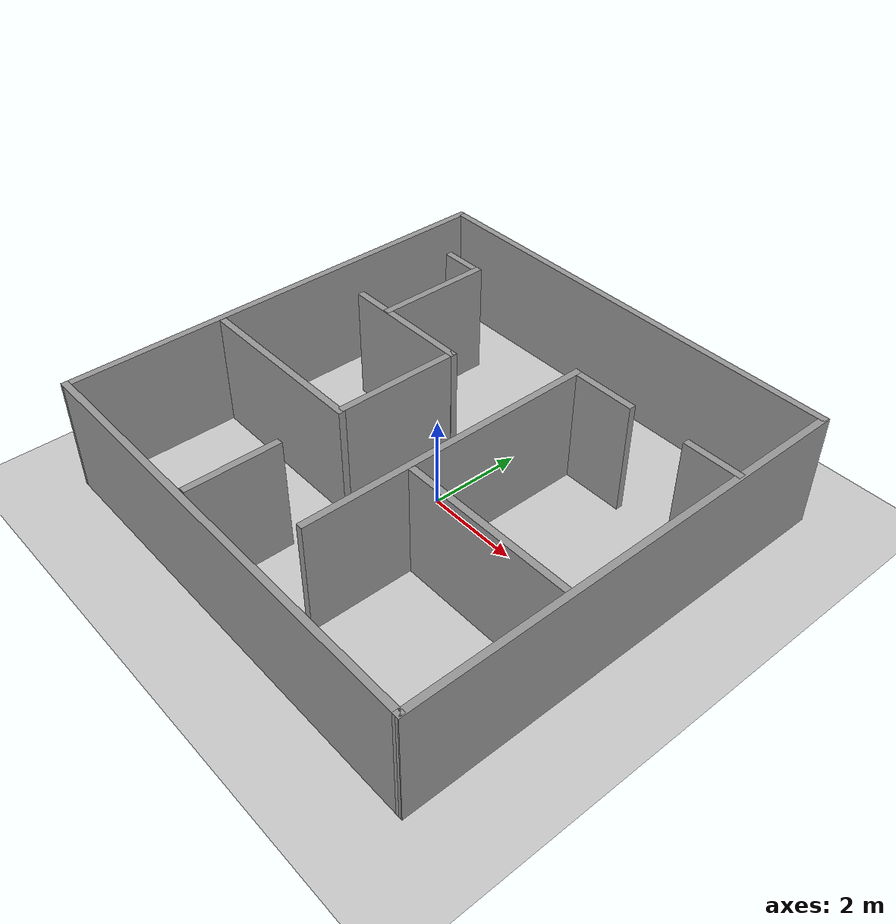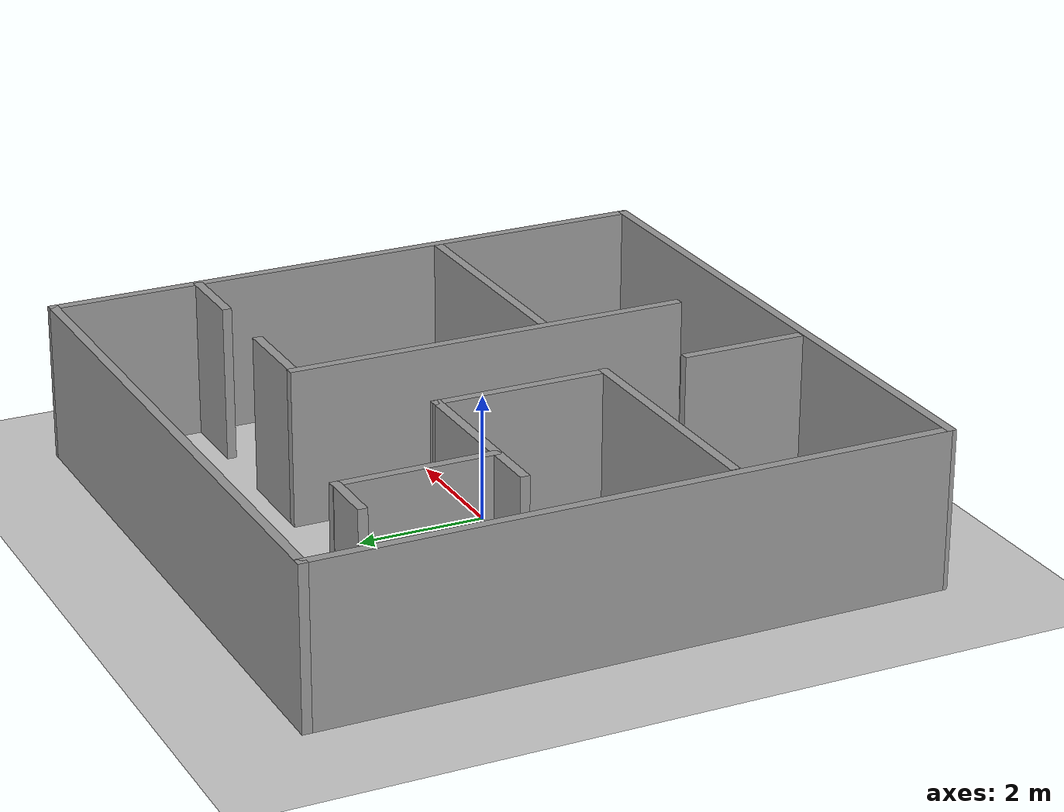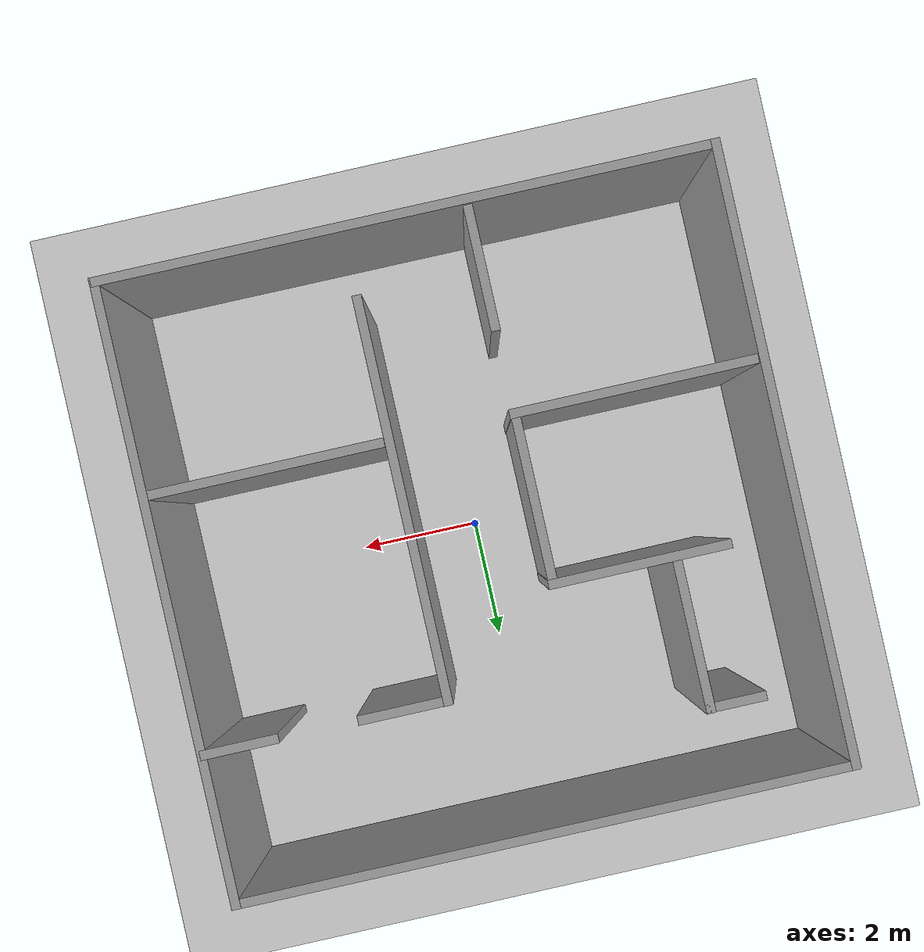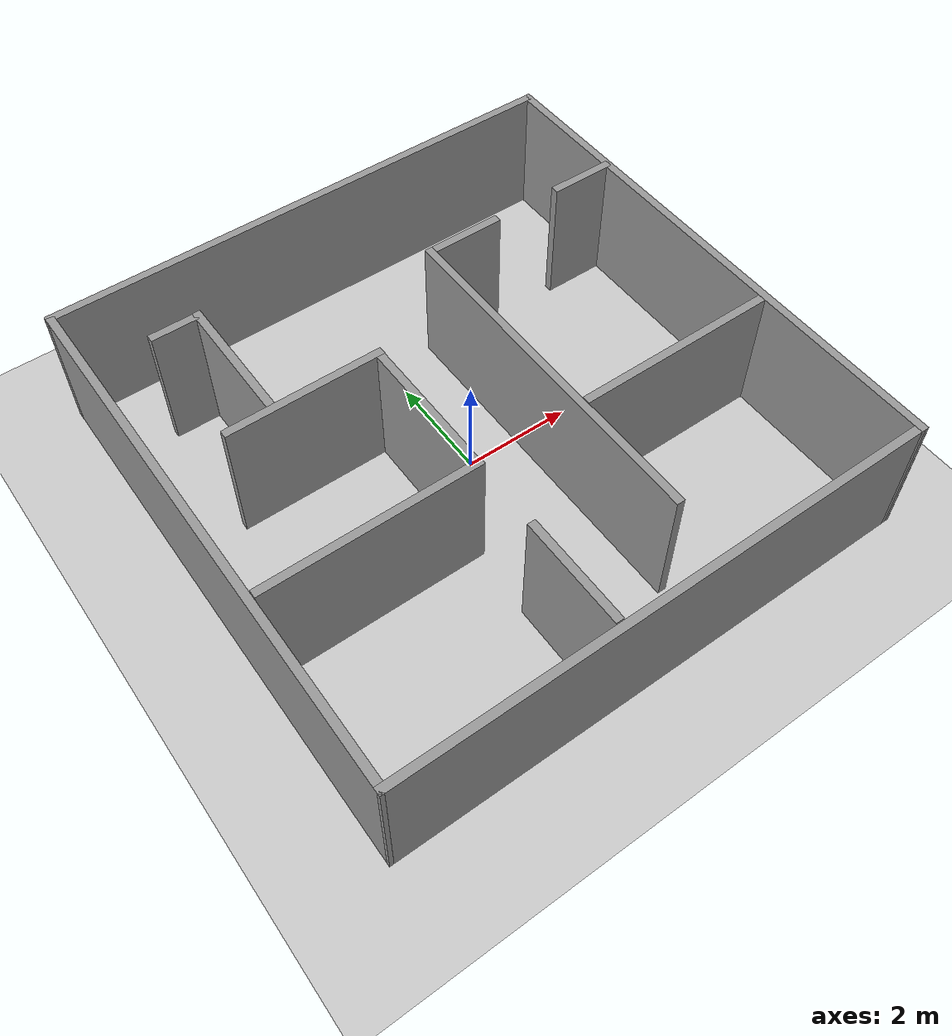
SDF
<sdf version="1.6">
 <world name="default">
  <light name="sun" type="directional">
   <pose>0 0 10 0 -0 0</pose>
   <diffuse>0.8 0.8 0.8 1</diffuse>
   <specular>0.2 0.2 0.2 1</specular>
   <attenuation>
    <range>1000</range>
    <constant>0.9</constant>
    <linear>0.01</linear>
    <quadratic>0.001</quadratic>
   </attenuation>
   <direction>-0.5 0.1 -0.9</direction>
  </light>
  <model name="ground_plane">
   <static>1</static>
   <link name="link">
    <collision name="collision">
     <geometry><plane><normal>0 0 1</normal><size>100 100</size></plane></geometry>
     <surface>
      <contact><collide_bitmask>65535</collide_bitmask></contact>
      <friction><ode><mu>100</mu><mu2>50</mu2></ode></friction>
     </surface>
    </collision>
    <visual name="visual">
     <cast_shadows>0</cast_shadows>
     <geometry><plane><normal>0 0 1</normal><size>100 100</size></plane></geometry>
     <material>
      <script><uri>file://media/materials/scripts/gazebo.material</uri><name>Gazebo/Grey</name></script>
     </material>
    </visual>
   </link>
  </model>
  <gravity>0 0 -9.8</gravity>
  <magnetic_field>6e-06 2.3e-05 -4.2e-05</magnetic_field>
  <atmosphere type="adiabatic"/>
  <physics name="default_physics" default="0" type="ode">
   <max_step_size>0.001</max_step_size>
   <real_time_factor>1</real_time_factor>
   <real_time_update_rate>1000</real_time_update_rate>
  </physics>
  <scene><ambient>0.4 0.4 0.4 1</ambient><background>0.7 0.7 0.7 1</background><shadows>1</shadows></scene>
  <spherical_coordinates>
   <surface_model>EARTH_WGS84</surface_model>
   <latitude_deg>0</latitude_deg>
   <longitude_deg>0</longitude_deg>
   <elevation>0</elevation>
   <heading_deg>0</heading_deg>
  </spherical_coordinates>
  <model name="simple_building_floor">
   <link name="Wall_11">
    <collision name="Wall_11_Collision">
     <geometry><box><size>6.5 0.15 2.5</size></box></geometry>
     <pose>0 0 1.25 0 -0 0</pose>
    </collision>
    <visual name="Wall_11_Visual">
     <pose>0 0 1.25 0 -0 0</pose>
     <geometry><box><size>6.5 0.15 2.5</size></box></geometry>
     <material>
      <script><uri>file://media/materials/scripts/gazebo.material</uri><name>Gazebo/Grey</name></script>
      <ambient>1 1 1 1</ambient>
     </material>
     <meta><layer>0</layer></meta>
    </visual>
    <pose>1.01204 -0.592703 0 0 0 -1.5708</pose>
   </link>
   <link name="Wall_13">
    <collision name="Wall_13_Collision">
     <geometry><box><size>2.9142 0.15 2.5</size></box></geometry>
     <pose>0 0 1.25 0 -0 0</pose>
    </collision>
    <visual name="Wall_13_Visual">
     <pose>0 0 1.25 0 -0 0</pose>
     <geometry><box><size>2.9142 0.15 2.5</size></box></geometry>
     <material>
      <script><uri>file://media/materials/scripts/gazebo.material</uri><name>Gazebo/Grey</name></script>
      <ambient>1 1 1 1</ambient>
     </material>
     <meta><layer>0</layer></meta>
    </visual>
    <pose>-2.35206 1.17551 0 0 -0 0.002425</pose>
   </link>
   <link name="Wall_16">
    <collision name="Wall_16_Collision">
     <geometry><box><size>2.543 0.15 2.5</size></box></geometry>
     <pose>0 0 1.25 0 -0 0</pose>
    </collision>
    <visual name="Wall_16_Visual">
     <pose>0 0 1.25 0 -0 0</pose>
     <geometry><box><size>2.543 0.15 2.5</size></box></geometry>
     <material>
      <script><uri>file://media/materials/scripts/gazebo.material</uri><name>Gazebo/Grey</name></script>
      <ambient>1 1 1 1</ambient>
     </material>
     <meta><layer>0</layer></meta>
    </visual>
    <pose>-2.92396 2.3948 0 0 -0 1.5708</pose>
   </link>
   <link name="Wall_17">
    <collision name="Wall_17_Collision">
     <geometry><box><size>0.965568 0.15 2.5</size></box></geometry>
     <pose>0 0 1.25 0 -0 0</pose>
    </collision>
    <visual name="Wall_17_Visual">
     <pose>0 0 1.25 0 -0 0</pose>
     <geometry><box><size>0.965568 0.15 2.5</size></box></geometry>
     <material>
      <script><uri>file://media/materials/scripts/gazebo.material</uri><name>Gazebo/Grey</name></script>
      <ambient>1 1 1 1</ambient>
     </material>
     <meta><layer>0</layer></meta>
    </visual>
    <pose>-3.33196 3.5826 0 0 -0 3.14159</pose>
   </link>
   <link name="Wall_22">
    <collision name="Wall_22_Collision">
     <geometry><box><size>2 0.15 2.5</size></box></geometry>
     <pose>0 0 1.25 0 -0 0</pose>
    </collision>
    <visual name="Wall_22_Visual">
     <pose>0 0 1.25 0 -0 0</pose>
     <geometry><box><size>2 0.15 2.5</size></box></geometry>
     <material>
      <script><uri>file://media/materials/scripts/gazebo.material</uri><name>Gazebo/Grey</name></script>
      <ambient>1 1 1 1</ambient>
     </material>
     <meta><layer>0</layer></meta>
    </visual>
    <pose>-0.97044 -3.8307 0 0 0 -1.5708</pose>
   </link>
   <link name="Wall_25">
    <collision name="Wall_25_Collision">
     <geometry><box><size>3.75 0.15 2.5</size></box></geometry>
     <pose>0 0 1.25 0 -0 0</pose>
    </collision>
    <visual name="Wall_25_Visual">
     <pose>0 0 1.25 0 -0 0</pose>
     <geometry><box><size>3.75 0.15 2.5</size></box></geometry>
     <material>
      <script><uri>file://media/materials/scripts/gazebo.material</uri><name>Gazebo/Grey</name></script>
      <ambient>1 1 1 1</ambient>
     </material>
     <meta><layer>0</layer></meta>
    </visual>
    <pose>2.96632 -1.52988 0 0 -0 0</pose>
   </link>
   <link name="Wall_28">
    <collision name="Wall_28_Collision">
     <geometry><box><size>1.35 0.15 2.5</size></box></geometry>
     <pose>0 0 1.25 0 -0 0</pose>
    </collision>
    <visual name="Wall_28_Visual">
     <pose>0 0 1.25 0 -0 0</pose>
     <geometry><box><size>1.35 0.15 2.5</size></box></geometry>
     <material>
      <script><uri>file://media/materials/scripts/gazebo.material</uri><name>Gazebo/Grey</name></script>
      <ambient>1 1 1 1</ambient>
     </material>
     <meta><layer>0</layer></meta>
    </visual>
    <pose>1.76175 2.57806 0 0 -0 3.14159</pose>
   </link>
   <link name="Wall_30">
    <collision name="Wall_30_Collision">
     <geometry><box><size>1.25 0.15 2.5</size></box></geometry>
     <pose>0 0 1.25 0 -0 0</pose>
    </collision>
    <visual name="Wall_30_Visual">
     <pose>0 0 1.25 0 -0 0</pose>
     <geometry><box><size>1.25 0.15 2.5</size></box></geometry>
     <material>
      <script><uri>file://media/materials/scripts/gazebo.material</uri><name>Gazebo/Grey</name></script>
      <ambient>1 1 1 1</ambient>
     </material>
     <meta><layer>0</layer></meta>
    </visual>
    <pose>4.31226 2.57149 0 0 -0 0</pose>
   </link>
   <link name="Wall_33">
    <collision name="Wall_33_Collision">
     <geometry><box><size>3.95 0.15 2.5</size></box></geometry>
     <pose>0 0 1.25 0 -0 0</pose>
    </collision>
    <visual name="Wall_33_Visual">
     <pose>0 0 1.25 0 -0 0</pose>
     <geometry><box><size>3.95 0.15 2.5</size></box></geometry>
     <material>
      <script><uri>file://media/materials/scripts/gazebo.material</uri><name>Gazebo/Grey</name></script>
      <ambient>1 1 1 1</ambient>
     </material>
     <meta><layer>0</layer></meta>
    </visual>
    <pose>-2.86367 -1.52533 0 0 -0 0</pose>
   </link>
   <link name="Wall_35">
    <collision name="Wall_35_Collision">
     <geometry><box><size>10 0.15 2.5</size></box></geometry>
     <pose>0 0 1.25 0 -0 0</pose>
    </collision>
    <visual name="Wall_35_Visual">
     <pose>0 0 1.25 0 -0 0</pose>
     <geometry><box><size>10 0.15 2.5</size></box></geometry>
     <material>
      <script><uri>file://media/materials/scripts/gazebo.material</uri><name>Gazebo/Grey</name></script>
      <ambient>1 1 1 1</ambient>
     </material>
     <meta><layer>0</layer></meta>
    </visual>
    <pose>-4.92496 0.010298 0 0 0 -1.5708</pose>
   </link>
   <link name="Wall_36">
    <collision name="Wall_36_Collision">
     <geometry><box><size>9.97984 0.15 2.5</size></box></geometry>
     <pose>0 0 1.25 0 -0 0</pose>
    </collision>
    <visual name="Wall_36_Visual">
     <pose>0 0 1.25 0 -0 0</pose>
     <geometry><box><size>9.97984 0.15 2.5</size></box></geometry>
     <material>
      <script><uri>file://media/materials/scripts/gazebo.material</uri><name>Gazebo/Grey</name></script>
      <ambient>1 1 1 1</ambient>
     </material>
     <meta><layer>0</layer></meta>
    </visual>
    <pose>-0.010055 -4.92491 0 0 0 -0.002077</pose>
   </link>
   <link name="Wall_37">
    <collision name="Wall_37_Collision">
     <geometry><box><size>10.0202 0.15 2.5</size></box></geometry>
     <pose>0 0 1.25 0 -0 0</pose>
    </collision>
    <visual name="Wall_37_Visual">
     <pose>0 0 1.25 0 -0 0</pose>
     <geometry><box><size>10.0202 0.15 2.5</size></box></geometry>
     <material>
      <script><uri>file://media/materials/scripts/gazebo.material</uri><name>Gazebo/Grey</name></script>
      <ambient>1 1 1 1</ambient>
     </material>
     <meta><layer>0</layer></meta>
    </visual>
    <pose>4.91491 -5.9e-05 0 0 -0 1.57283</pose>
   </link>
   <link name="Wall_38">
    <collision name="Wall_38_Collision">
     <geometry><box><size>9.9597 0.15 2.5</size></box></geometry>
     <pose>0 0 1.25 0 -0 0</pose>
    </collision>
    <visual name="Wall_38_Visual">
     <pose>0 0 1.25 0 -0 0</pose>
     <geometry><box><size>9.9597 0.15 2.5</size></box></geometry>
     <material>
      <script><uri>file://media/materials/scripts/gazebo.material</uri><name>Gazebo/Grey</name></script>
      <ambient>1 1 1 1</ambient>
     </material>
     <meta><layer>0</layer></meta>
    </visual>
    <pose>-0.020112 4.93515 0 0 -0 3.14156</pose>
   </link>
   <link name="Wall_9">
    <collision name="Wall_9_Collision">
     <geometry><box><size>2.75 0.15 2.5</size></box></geometry>
     <pose>0 0 1.25 0 -0 0</pose>
    </collision>
    <visual name="Wall_9_Visual">
     <pose>0 0 1.25 0 -0 0</pose>
     <geometry><box><size>2.75 0.15 2.5</size></box></geometry>
     <material>
      <script><uri>file://media/materials/scripts/gazebo.material</uri><name>Gazebo/Grey</name></script>
      <ambient>1 1 1 1</ambient>
     </material>
     <meta><layer>0</layer></meta>
    </visual>
    <pose>-0.977525 -0.121141 0 0 0 -1.5708</pose>
   </link>
   <static>1</static>
  </model>
 </world>
</sdf>
